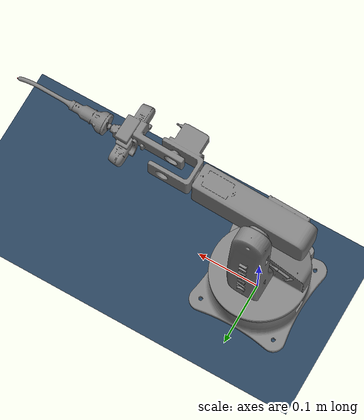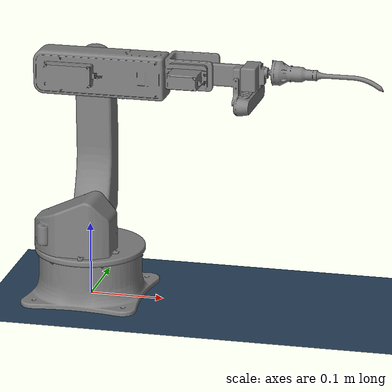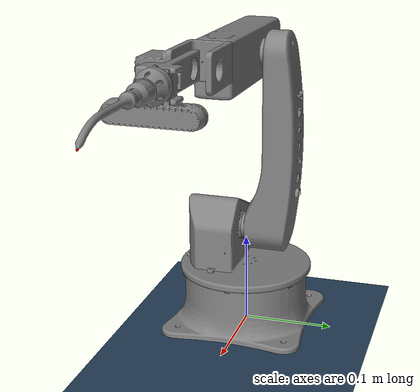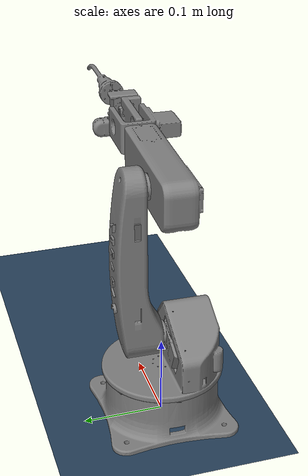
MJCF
<mujoco model="terafac mini scene">

  <include file="./robots/TerafacMini.xml"/>

  <statistic center="0.1 0 1" extent="1.5"/>

  <visual>
    <headlight diffuse="0.6 0.6 0.6" ambient="0.3 0.3 0.3" specular="0 0 0"/>
    <rgba haze="0.15 0.25 0.35 1"/>
    <global azimuth="45" elevation="-20"/>"
  </visual>

  <asset>
    <texture type="skybox" builtin="gradient" rgb1="0.3 0.5 0.7" rgb2="0 0 0" width="512" height="3072"/>
    <texture type="2d" name="groundplane" builtin="checker" mark="edge" rgb1="0.2 0.3 0.4" rgb2="0.1 0.2 0.3"
      markrgb="0.8 0.8 0.8" width="300" height="300"/>
    <material name="groundplane" texture="groundplane" texuniform="true" texrepeat="5 5" reflectance="0.2"/>
  </asset>

  <worldbody>
    <camera name="side_view" pos="1.445 -2.865 1.145" xyaxes="0.971 0.241 0.000 -0.030 0.120 0.992"/>
    <light pos="0 0 1.5" dir="0 0 -1" directional="true"/>
    <geom name="floor" size="0 0 0.05" type="plane" material="groundplane"/>

  </worldbody>

</mujoco>

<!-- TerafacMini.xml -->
<mujoco model="terafacMini">
  <compiler angle="radian" autolimits="true"/>

  <default>
    <!-- Changed damping to dof_damping -->
    <joint type="hinge" frictionloss="0.1" armature="0.1" limited="true"/>
    <default class="visual">
      <geom type="mesh"/>
    </default>
    <position ctrllimited="true"/>
  </default>

  <option integrator="implicitfast">
    <flag contact="disable"/>
  </option>

  <asset>
    <mesh name="base" file="./meshes/base.obj" scale="0.001 0.001 0.001"/>
    <mesh name="link1" file="./meshes/link1.obj" scale="0.001 0.001 0.001"/>
    <mesh name="link2" file="./meshes/link2.obj" scale="0.001 0.001 0.001"/>
    <mesh name="link3" file="./meshes/link3.obj" scale="0.001 0.001 0.001"/>
    <mesh name="link4" file="./meshes/link4.obj" scale="0.001 0.001 0.001"/>
    <mesh name="link5" file="./meshes/link5.obj" scale="0.001 0.001 0.001"/>
    <mesh name="link6" file="./meshes/link6.obj" scale="0.001 0.001 0.001"/>
  </asset>

  <worldbody>
    <camera name="tracker" pos="0.764 -0.430 0.671" xyaxes="0.491 0.871 -0.000 -0.530 0.298 0.794"/>
    <light name="top" pos="0 0 2" mode="trackcom"/>
    <body name="base" euler="0 0 3.12413936">      <!-- Matched URDF orientation -->
      <inertial mass="4.970684" pos="0 0 0" diaginertia="0.70337 0.70661 0.70337"/>
      <geom mesh="base" class="visual" />
      <body name="link1" pos="0.00045 0.00075 0.0675">
        <inertial mass="3.228604" pos="0 0 0" diaginertia="0.037242 0.036155 0.01083"/>
        <joint name="joint_1" type="hinge" axis="0 0 -1" range="-3.14 3.14"/>
        <geom mesh="link1" class="visual"/>

        <body name="link2" pos="-0.00001 0.0014 0.0475008" euler="0 -1.56275745 0">
          <inertial mass="3.587895" pos="0 0 0" diaginertia="0.025853 0.019552 0.028323"/>
          <joint name="joint_2" type="hinge" axis="0 -1 0" range="-1.57 1.57"/>
          <!-- Corrected range -->
          <geom mesh="link2" class="visual"/>

          <body name="link3" pos="0.2 -0.0264 0" euler="1.56275745 0 0">
            <inertial mass="1.225946" pos="0 0 0" diaginertia="0.035549 0.029474 0.008627"/>
            <joint name="joint_3" type="hinge" axis="0 0 1" range="-1.57 1.57"/>
            <!-- Corrected range -->
            <geom mesh="link3" class="visual"/>

            <body name="link4" pos=".01 .1074 -.0267" euler="-1.56275745 0 0">
              <inertial mass="1.666555" pos="0 0 0" diaginertia="0.001964 0.004354 0.005433"/>
              <joint name="joint_4" type="hinge" axis="0 0 -1" range="-3.14 3.14"/>
              <geom mesh="link4" class="visual"/>

              <body name="link5" pos="-0.0001 0.0172 .04767" euler="1.56275745 0 0">
                <inertial mass="1.225946" pos="0 0 0" diaginertia="0.035549 0.029474 0.008627"/>
                <joint name="joint_5" type="hinge" axis="0 0 -1" range="-1.57 1.57"/>
                <geom mesh="link5" class="visual"/>

                <body name="link6" pos=".00515 .0958 .01705" euler="-1.56275745 0 0">
                  <inertial mass="0.735522" pos="0 0 0" diaginertia="0.012516 0.010027 0.004815"/>
                  <joint name="joint_6" type="hinge" axis="0 0 -1" range="-3.14 3.14"/>
                  <geom mesh="link6" class="visual"/>

                  <!-- Added tool0 to match URDF -->
                  <body name="attachment" pos="-0.0156 0 .150889">
                    <site name="attachment_site" rgba="1 0 0 1" size=".001" group="1" quat="0 0 0 1"/>
                  </body>
                </body>
              </body>
            </body>
          </body>
        </body>
      </body>
    </body>
  </worldbody>

  <actuator>
    <!-- Using consistent friction and damping across all joints -->
    <position name="joint_1" joint="joint_1" ctrlrange="-3.14 3.14" kp="1000" kv="100"/>
    <position name="joint_2" joint="joint_2" ctrlrange="-1.57 1.57" kp="1000" kv="100"/>
    <position name="joint_3" joint="joint_3" ctrlrange="-1.57 1.57" kp="1000" kv="100"/>
    <position name="joint_4" joint="joint_4" ctrlrange="-3.14 3.14" kp="1000" kv="100"/>
    <position name="joint_5" joint="joint_5" ctrlrange="-1.57 1.57" kp="1000" kv="100"/>
    <position name="joint_6" joint="joint_6" ctrlrange="-3.14 3.14" kp="1000" kv="100"/>
  </actuator>

  <keyframe>
    <key name="home" qpos="0 0 0 0 0 0" ctrl="0 0 0 0 0 0"/>
  </keyframe>
</mujoco>
